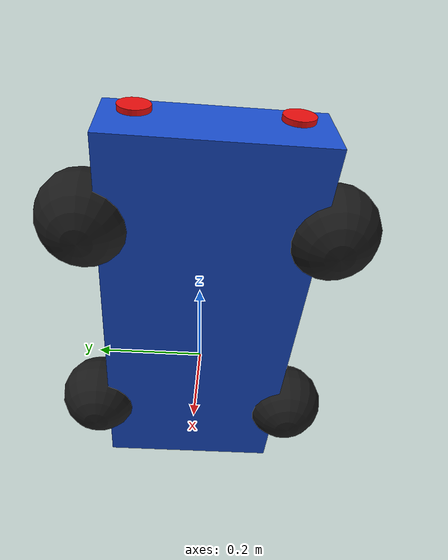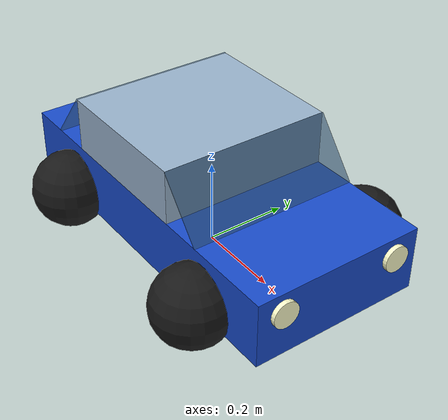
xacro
<robot name="ugv_sedan" xmlns:xacro="http://ros.org/wiki/xacro">
<!--
 ===================== PROPERTIES =====================
-->
<xacro:property name="PI" value="3.14159265359"/>
<!-- Chassis (lower body) -->
<xacro:property name="chassis_l" value="0.85"/>
<xacro:property name="chassis_w" value="0.40"/>
<xacro:property name="chassis_h" value="0.15"/>
<xacro:property name="chassis_m" value="5.0"/>

<!-- Cabin (upper body) -->
<xacro:property name="cabin_l" value="0.35"/>
<xacro:property name="cabin_w" value="0.40"/>
<xacro:property name="cabin_h" value="0.125"/>
<xacro:property name="cabin_m" value="1.25"/>
<xacro:property name="cabin_x" value="-0.05"/>

<!-- Windshield / rear window (sloped glass panels) -->
<xacro:property name="glass_t" value="0.005"/>
<xacro:property name="glass_m" value="0.125"/>
<xacro:property name="glass_run" value="0.10"/>
<!-- horizontal run of the slope -->
<xacro:property name="glass_len" value="${sqrt(glass_run*glass_run + cabin_h*cabin_h)}"/>
<xacro:property name="glass_pitch" value="${atan2(glass_run, cabin_h)}"/>

<!-- Wheels (spheres) -->
<xacro:property name="wheel_r" value="0.09"/>
<xacro:property name="wheel_m" value="0.4"/>
<xacro:property name="wheel_x" value="0.25"/>
<xacro:property name="wheel_y" value="0.225"/>

<!-- Lights (thin discs) -->
<xacro:property name="light_r" value="0.03"/>
<xacro:property name="light_t" value="0.01"/>
<xacro:property name="light_m" value="0.015"/>
<xacro:property name="light_y" value="0.14"/>

<!-- Ground clearance & base height -->
<xacro:property name="clearance" value="0.05"/>
<xacro:property name="base_z" value="${clearance + chassis_h/2}"/>
<!--
 ===================== MATERIALS =====================
-->
<material name="body_blue">
<color rgba="0.1 0.3 0.8 1.0"/>
</material>
<material name="cabin_grey">
<color rgba="0.6 0.7 0.8 1.0"/>
</material>
<material name="glass">
<color rgba="0.2 0.35 0.5 0.6"/>
</material>
<material name="wheel_black">
<color rgba="0.1 0.1 0.1 1.0"/>
</material>
<material name="light_white">
<color rgba="1.0 1.0 0.8 1.0"/>
</material>
<material name="light_red">
<color rgba="0.9 0.05 0.05 1.0"/>
</material>
<!--
 ===================== INERTIA MACROS =====================
-->
<xacro:macro name="box_inertia" params="m x y z">
<inertial>
<mass value="${m}"/>
<inertia ixx="${m/12.0*(y*y+z*z)}" ixy="0" ixz="0" iyy="${m/12.0*(x*x+z*z)}" iyz="0" izz="${m/12.0*(x*x+y*y)}"/>
</inertial>
</xacro:macro>
<xacro:macro name="sphere_inertia" params="m r">
<inertial>
<mass value="${m}"/>
<inertia ixx="${2.0/5.0*m*r*r}" ixy="0" ixz="0" iyy="${2.0/5.0*m*r*r}" iyz="0" izz="${2.0/5.0*m*r*r}"/>
</inertial>
</xacro:macro>
<!--
 Cylinder inertia with its axis along the link's X (disc facing front/back)
-->
<xacro:macro name="disc_x_inertia" params="m r h">
<inertial>
<mass value="${m}"/>
<inertia ixx="${m*r*r/2.0}" ixy="0" ixz="0" iyy="${m/12.0*(3*r*r+h*h)}" iyz="0" izz="${m/12.0*(3*r*r+h*h)}"/>
</inertial>
</xacro:macro>
<!--
 ===================== LINKS & JOINTS =====================
-->
<!-- Ground reference frame -->
<link name="base_footprint"/>
<!-- Chassis -->
<link name="base_link">
<visual>
<geometry>
<box size="${chassis_l} ${chassis_w} ${chassis_h}"/>
</geometry>
<material name="body_blue"/>
</visual>
<collision>
<geometry>
<box size="${chassis_l} ${chassis_w} ${chassis_h}"/>
</geometry>
</collision>
<xacro:box_inertia m="${chassis_m}" x="${chassis_l}" y="${chassis_w}" z="${chassis_h}"/>
</link>
<joint name="base_footprint_joint" type="fixed">
<parent link="base_footprint"/>
<child link="base_link"/>
<origin xyz="0 0 ${base_z}" rpy="0 0 0"/>
</joint>
<!-- Cabin (sits on top of chassis) -->
<link name="cabin_link">
<visual>
<geometry>
<box size="${cabin_l} ${cabin_w} ${cabin_h}"/>
</geometry>
<material name="cabin_grey"/>
</visual>
<collision>
<geometry>
<box size="${cabin_l} ${cabin_w} ${cabin_h}"/>
</geometry>
</collision>
<xacro:box_inertia m="${cabin_m}" x="${cabin_l}" y="${cabin_w}" z="${cabin_h}"/>
</link>
<joint name="cabin_joint" type="fixed">
<parent link="base_link"/>
<child link="cabin_link"/>
<origin xyz="${cabin_x} 0 ${chassis_h/2 + cabin_h/2}" rpy="0 0 0"/>
</joint>
<!--
 Glass panel macro: slope = -1 for windshield (top leans back), +1 for rear window
-->
<xacro:macro name="glass_panel" params="name side slope">
<link name="${name}_link">
<visual>
<geometry>
<box size="${glass_t} ${cabin_w} ${glass_len}"/>
</geometry>
<material name="glass"/>
</visual>
<collision>
<geometry>
<box size="${glass_t} ${cabin_w} ${glass_len}"/>
</geometry>
</collision>
<xacro:box_inertia m="${glass_m}" x="${glass_t}" y="${cabin_w}" z="${glass_len}"/>
</link>
<joint name="${name}_joint" type="fixed">
<parent link="cabin_link"/>
<child link="${name}_link"/>
<origin xyz="${side*(cabin_l/2 + glass_run/2)} 0 0" rpy="0 ${slope*glass_pitch} 0"/>
</joint>
</xacro:macro>
<xacro:glass_panel name="windshield" side="1" slope="-1"/>
<xacro:glass_panel name="rear_window" side="-1" slope="1"/>
<!--
 Wheel macro: spheres on continuous joints rotating about Y
-->
<xacro:macro name="wheel" params="name x y">
<link name="${name}_wheel_link">
<visual>
<geometry>
<sphere radius="${wheel_r}"/>
</geometry>
<material name="wheel_black"/>
</visual>
<collision>
<geometry>
<sphere radius="${wheel_r}"/>
</geometry>
</collision>
<xacro:sphere_inertia m="${wheel_m}" r="${wheel_r}"/>
</link>
<joint name="${name}_wheel_joint" type="continuous">
<parent link="base_link"/>
<child link="${name}_wheel_link"/>
<!-- wheel center sits at z = wheel_r above ground -->
<origin xyz="${x} ${y} ${wheel_r - base_z}" rpy="0 0 0"/>
<axis xyz="0 1 0"/>
<dynamics damping="0.05" friction="0.01"/>
</joint>
</xacro:macro>
<xacro:wheel name="front_left" x="${wheel_x}" y="${wheel_y}"/>
<xacro:wheel name="front_right" x="${wheel_x}" y="${-1*wheel_y}"/>
<xacro:wheel name="rear_left" x="${-1*wheel_x}" y="${wheel_y}"/>
<xacro:wheel name="rear_right" x="${-1*wheel_x}" y="${-1*wheel_y}"/>
<!--
 Light macro: thin disc, axis along X, fixed to chassis
-->
<xacro:macro name="light" params="name x y material">
<link name="${name}_light_link">
<visual>
<origin xyz="0 0 0" rpy="0 ${PI/2} 0"/>
<geometry>
<cylinder radius="${light_r}" length="${light_t}"/>
</geometry>
<material name="${material}"/>
</visual>
<collision>
<origin xyz="0 0 0" rpy="0 ${PI/2} 0"/>
<geometry>
<cylinder radius="${light_r}" length="${light_t}"/>
</geometry>
</collision>
<xacro:disc_x_inertia m="${light_m}" r="${light_r}" h="${light_t}"/>
</link>
<joint name="${name}_light_joint" type="fixed">
<parent link="base_link"/>
<child link="${name}_light_link"/>
<origin xyz="${x} ${y} 0.03" rpy="0 0 0"/>
</joint>
</xacro:macro>
<xacro:property name="light_x" value="${chassis_l/2 + light_t/2}"/>
<xacro:light name="front_left" x="${light_x}" y="${light_y}" material="light_white"/>
<xacro:light name="front_right" x="${light_x}" y="${-1*light_y}" material="light_white"/>
<xacro:light name="rear_left" x="${-1*light_x}" y="${light_y}" material="light_red"/>
<xacro:light name="rear_right" x="${-1*light_x}" y="${-1*light_y}" material="light_red"/>
</robot>
